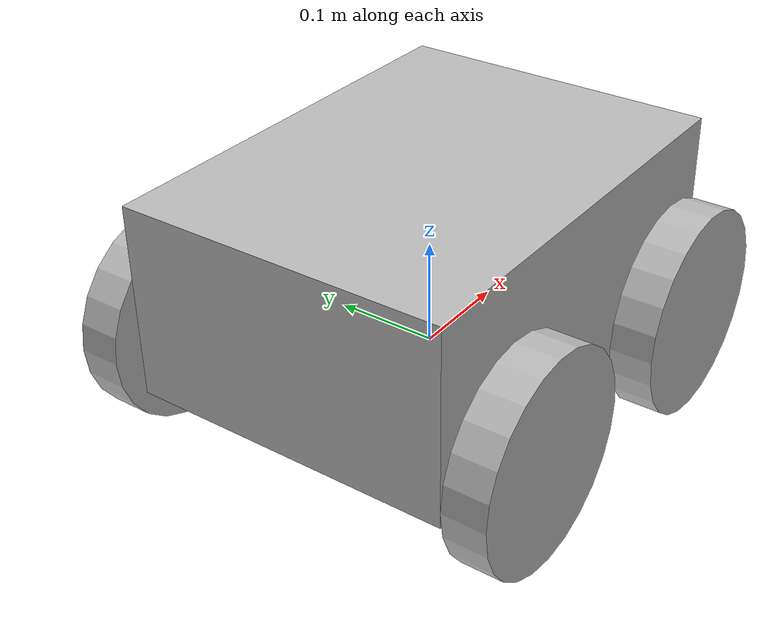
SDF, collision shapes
<?xml version="1.0"?>
<sdf version="1.6">
    <model name="X2">
        <link name="base_link">
            <inertial>
                <pose>0.011999 0.002 0.066996 0 -0 0</pose>
                <mass>16.524</mass>
                <inertia>
                    <ixx>0.320605</ixx>
                    <ixy>-0.000800023</ixy>
                    <ixz>0.0163992</ixz>
                    <iyy>0.399205</iyy>
                    <iyz>-0.000900133</iyz>
                    <izz>0.455501</izz>
                </inertia>
            </inertial>
            <collision name="chassis_collision">
                <pose>0 0 0.092 0 -0 0</pose>
                <geometry>
                    <box>
                        <size>0.42 0.31 0.184</size>
                    </box>
                </geometry>
            </collision>
            <visual name="chassis_visual">
                <pose>0 0 -0.0655 1.5708 0 -1.5708</pose>
                <geometry>
                    <mesh>
                        <uri>file://REPLACE_RESOURCE_PATH/robots/X2_Config_6/meshes/x2_chassis.dae</uri>
                    </mesh>
                </geometry>
            </visual>
            <visual name="navsat_visual_1">
                <pose>-0.18 0.126 0.1895 0 -0 0</pose>
                <geometry>
                    <cylinder>
                        <length>0.016</length>
                        <radius>0.026</radius>
                    </cylinder>
                </geometry>
            </visual>
            <visual name="center_left_headlight_visual">
                <pose>0.22 0.05 0.0845 0 -0 -3.14159</pose>
                <geometry>
                    <mesh>
                        <uri>file://REPLACE_RESOURCE_PATH/robots/X2_Config_6/meshes/headlight.dae</uri>
                    </mesh>
                </geometry>
            </visual>
            <visual name="left_headlight_visual">
                <pose>0.22 0.145 0.0845 0 -0 -3.14159</pose>
                <geometry>
                    <mesh>
                        <uri>file://REPLACE_RESOURCE_PATH/robots/X2_Config_6/meshes/headlight.dae</uri>
                    </mesh>
                </geometry>
            </visual>
            <visual name="center_right_headlight_visual">
                <pose>0.22 -0.05 0.0845 0 -0 -3.14159</pose>
                <geometry>
                    <mesh>
                        <uri>file://REPLACE_RESOURCE_PATH/robots/X2_Config_6/meshes/headlight.dae</uri>
                    </mesh>
                </geometry>
            </visual>
            <visual name="right_headlight_visual">
                <pose>0.22 -0.145 0.0845 0 -0 -3.14159</pose>
                <geometry>
                    <mesh>
                        <uri>file://REPLACE_RESOURCE_PATH/robots/X2_Config_6/meshes/headlight.dae</uri>
                    </mesh>
                </geometry>
            </visual>

            <sensor name="imu_sensor" type="imu">
                <always_on>1</always_on>
                <update_rate>50</update_rate>
                <imu>
                    <enable_orientation>0</enable_orientation>
                    <angular_velocity>
                        <x>
                            <noise type="gaussian">
                                <mean>0</mean>
                                <stddev>0.009</stddev>
                                <bias_mean>0.00075</bias_mean>
                                <bias_stddev>0.005</bias_stddev>
                                <dynamic_bias_stddev>0.00002</dynamic_bias_stddev>
				<dynamic_bias_correlation_time>400.0</dynamic_bias_correlation_time>
				<precision>0.00025</precision>
                            </noise>
                        </x>
                        <y>
                            <noise type="gaussian">
                                <mean>0</mean>
                                <stddev>0.009</stddev>
                                <bias_mean>0.00075</bias_mean>
                                <bias_stddev>0.005</bias_stddev>
                                <dynamic_bias_stddev>0.00002</dynamic_bias_stddev>
				<dynamic_bias_correlation_time>400.0</dynamic_bias_correlation_time>
				<precision>0.00025</precision>
                            </noise>
                        </y>
                        <z>
                            <noise type="gaussian">
                                <mean>0</mean>
                                <stddev>0.009</stddev>
                                <bias_mean>0.00075</bias_mean>
                                <bias_stddev>0.005</bias_stddev>
                                <dynamic_bias_stddev>0.00002</dynamic_bias_stddev>
				<dynamic_bias_correlation_time>400.0</dynamic_bias_correlation_time>
				<precision>0.00025</precision>
                            </noise>
                        </z>
                    </angular_velocity>
                    <linear_acceleration>
                        <x>
                            <noise type="gaussian">
                                <mean>0</mean>
                                <stddev>0.021</stddev>
                                <bias_mean>0.05</bias_mean>
                                <bias_stddev>0.0075</bias_stddev>
                                <dynamic_bias_stddev>0.000375</dynamic_bias_stddev>
				<dynamic_bias_correlation_time>175.0</dynamic_bias_correlation_time>
				<precision>0.005</precision>
                            </noise>
                        </x>
                        <y>
                            <noise type="gaussian">
                                <mean>0</mean>
                                <stddev>0.021</stddev>
                                <bias_mean>0.05</bias_mean>
                                <bias_stddev>0.0075</bias_stddev>
                                <dynamic_bias_stddev>0.000375</dynamic_bias_stddev>
				<dynamic_bias_correlation_time>175.0</dynamic_bias_correlation_time>
				<precision>0.005</precision>
                            </noise>
                        </y>
                        <z>
                            <noise type="gaussian">
                                <mean>0</mean>
                                <stddev>0.021</stddev>
                                <bias_mean>0.05</bias_mean>
                                <bias_stddev>0.0075</bias_stddev>
                                <dynamic_bias_stddev>0.000375</dynamic_bias_stddev>
				<dynamic_bias_correlation_time>175.0</dynamic_bias_correlation_time>
				<precision>0.005</precision>
                            </noise>
                        </z>
                    </linear_acceleration>
                </imu>

            </sensor>

            <visual name="camera_visual">
                <pose>0.23 0 0.19 0 0 0</pose>
                <geometry>
                    <box>
                        <size>0.02 0.02 0.02</size>
                    </box>
                </geometry>
            </visual>
            <visual name="laser_visual">
                <pose>0 0 0.23 0 -0 0</pose>
                <geometry>
                    <cylinder>
                        <radius>0.03</radius>
                        <length>0.1</length>
                    </cylinder>
                </geometry>
            </visual>
            <sensor name="front_laser" type="gpu_ray">
                <pose>0 0 0.27 0 -0 0</pose>
                <update_rate>15</update_rate>
                <lidar>
                    <scan>
                        <horizontal>
                            <!-- Resolution can't be above 16k, see
                            https://bitbucket.org/ignitionrobotics/ign-sensors/issues/8 -->
                            <samples>10000</samples>
                            <resolution>0.1</resolution>
                            <min_angle>-3.14159</min_angle>
                            <max_angle>3.14159</max_angle>
                        </horizontal>
                        <vertical>
                            <samples>16</samples>
                            <resolution>1</resolution>
                            <min_angle>-0.261799</min_angle>
                            <max_angle>0.261799</max_angle>
                        </vertical>
                    </scan>
                    <range>
                        <min>1.0</min>
                        <max>300</max>
                        <resolution>0.01</resolution>
                    </range>
                    <noise>
                        <type>gaussian</type>
                        <mean>0</mean>
                        <stddev>0.01</stddev>
                    </noise>
                </lidar>
            </sensor>
        </link>

        <link name="front_left_wheel">
            <pose>0.131 0.187795 0.0345 0 -0 0</pose>
            <inertial>
                <mass>0.477</mass>
                <inertia>
                    <ixx>0.0013</ixx>
                    <ixy>0</ixy>
                    <ixz>0</ixz>
                    <iyy>0.0024</iyy>
                    <iyz>0</iyz>
                    <izz>0.0013</izz>
                </inertia>
            </inertial>
            <collision name="collision">
                <pose>0 0 0 1.5707963267948966 -0 0</pose>
                <geometry>
                    <cylinder>
                        <length>0.04</length>
                        <radius>0.098</radius>
                    </cylinder>
                </geometry>
                <surface>
                    <friction>
                        <ode>
                            <mu>1</mu>
                            <mu2>1</mu2>
                            <slip1>0.0026</slip1>
                            <slip2>0</slip2>
                            <fdir1>0 0 1</fdir1>
                        </ode>
                    </friction>
                </surface>
            </collision>
            <visual name="visual">
                <pose>0 0 0 1.5708 -0 0</pose>
                <geometry>
                    <mesh>
                        <uri>file://REPLACE_RESOURCE_PATH/robots/X2_Config_6/meshes/x2_wheel_left.dae</uri>
                    </mesh>
                </geometry>
            </visual>
        </link>

        <link name="front_right_wheel">
            <pose>0.131 -0.187795 0.0345 0 -0 0</pose>
            <inertial>
                <mass>0.477</mass>
                <inertia>
                    <ixx>0.0013</ixx>
                    <ixy>0</ixy>
                    <ixz>0</ixz>
                    <iyy>0.0024</iyy>
                    <iyz>0</iyz>
                    <izz>0.0013</izz>
                </inertia>
            </inertial>
            <collision name="collision">
                <pose>0 0 0 1.5707963267948966 -0 0</pose>
                <geometry>
                    <cylinder>
                        <length>0.04</length>
                        <radius>0.098</radius>
                    </cylinder>
                </geometry>
                <surface>
                    <friction>
                        <ode>
                            <mu>1</mu>
                            <mu2>1</mu2>
                            <slip1>0.0026</slip1>
                            <slip2>0</slip2>
                            <fdir1>0 0 1</fdir1>
                        </ode>
                    </friction>
                </surface>
            </collision>
            <visual name="visual">
                <pose>0 0 0 1.5708 -0 0</pose>
                <geometry>
                    <mesh>
                        <uri>file://REPLACE_RESOURCE_PATH/robots/X2_Config_6/meshes/x2_wheel_right.dae</uri>
                    </mesh>
                </geometry>
            </visual>
        </link>

        <link name="rear_left_wheel">
            <pose>-0.131 0.187795 0.0345 0 -0 0</pose>
            <inertial>
                <mass>0.477</mass>
                <inertia>
                    <ixx>0.0013</ixx>
                    <ixy>0</ixy>
                    <ixz>0</ixz>
                    <iyy>0.0024</iyy>
                    <iyz>0</iyz>
                    <izz>0.0013</izz>
                </inertia>
            </inertial>
            <collision name="collision">
                <pose>0 0 0 1.5707963267948966 -0 0</pose>
                <geometry>
                    <cylinder>
                        <length>0.04</length>
                        <radius>0.098</radius>
                    </cylinder>
                </geometry>
                <surface>
                    <friction>
                        <ode>
                            <mu>1</mu>
                            <mu2>1</mu2>
                            <slip1>0.0026</slip1>
                            <slip2>0</slip2>
                            <fdir1>0 0 1</fdir1>
                        </ode>
                    </friction>
                </surface>
            </collision>
            <visual name="visual">
                <pose>0 0 0 1.5708 -0 0</pose>
                <geometry>
                    <mesh>
                        <uri>file://REPLACE_RESOURCE_PATH/robots/X2_Config_6/meshes/x2_wheel_left.dae</uri>
                    </mesh>
                </geometry>
            </visual>
        </link>

        <link name="rear_right_wheel">
            <pose>-0.131 -0.187795 0.0345 0 -0 0</pose>
            <inertial>
                <mass>0.477</mass>
                <inertia>
                    <ixx>0.0013</ixx>
                    <ixy>0</ixy>
                    <ixz>0</ixz>
                    <iyy>0.0024</iyy>
                    <iyz>0</iyz>
                    <izz>0.0013</izz>
                </inertia>
            </inertial>
            <collision name="collision">
                <pose>0 0 0 1.5707963267948966 -0 0</pose>
                <geometry>
                    <cylinder>
                        <length>0.04</length>
                        <radius>0.098</radius>
                    </cylinder>
                </geometry>
                <surface>
                    <friction>
                        <ode>
                            <mu>1</mu>
                            <mu2>1</mu2>
                            <slip1>0.0026</slip1>
                            <slip2>0</slip2>
                            <fdir1>0 0 1</fdir1>
                        </ode>
                    </friction>
                </surface>
            </collision>
            <visual name="visual">
                <pose>0 0 0 1.5708 -0 0</pose>
                <geometry>
                    <mesh>
                        <uri>file://REPLACE_RESOURCE_PATH/robots/X2_Config_6/meshes/x2_wheel_right.dae</uri>
                    </mesh>
                </geometry>
            </visual>
        </link>

        <joint name="front_left_wheel_joint" type="revolute">
            <child>front_left_wheel</child>
            <parent>base_link</parent>
            <axis>
                <xyz>0 1 0</xyz>
                <limit>
                    <lower>-1e+16</lower>
                    <upper>1e+16</upper>
                </limit>
                <use_parent_model_frame>1</use_parent_model_frame>
            </axis>
        </joint>

        <joint name="rear_left_wheel_joint" type="revolute">
            <parent>base_link</parent>
            <child>rear_left_wheel</child>
            <axis>
                <xyz>0 1 0</xyz>
                <limit>
                    <lower>-1.79769e+308</lower>
                    <upper>+1.79769e+308</upper>
                </limit>
            </axis>
        </joint>

        <joint name="rear_right_wheel_joint" type="revolute">
            <parent>base_link</parent>
            <child>rear_right_wheel</child>
            <axis>
                <xyz>0 1 0</xyz>
                <limit>
                    <lower>-1.79769e+308</lower>
                    <upper>+1.79769e+308</upper>
                </limit>
            </axis>
        </joint>

        <joint name="front_right_wheel_joint" type="revolute">
            <parent>base_link</parent>
            <child>front_right_wheel</child>
            <axis>
                <xyz>0 1 0</xyz>
                <limit>
                    <lower>-1.79769e+308</lower>
                    <upper>+1.79769e+308</upper>
                </limit>
            </axis>
        </joint>

        <link name="base_link/front_laser">
            <pose>0 0 0.27 0 0 0</pose>
        </link>
        <joint name="base_link_front_laser_JOINT" type="fixed">
            <parent>base_link</parent>
            <child>base_link/front_laser</child>
        </joint>

        <plugin filename="gz-sim-diff-drive-system" name="gz::sim::systems::DiffDrive">
            <left_joint>front_left_wheel_joint</left_joint>
            <left_joint>rear_left_wheel_joint</left_joint>
            <right_joint>front_right_wheel_joint</right_joint>
            <right_joint>rear_right_wheel_joint</right_joint>
            <wheel_separation>1.25</wheel_separation>
            <wheel_radius>0.3</wheel_radius>
            <max_linear_acceleration>1</max_linear_acceleration>
            <min_linear_acceleration>-1</min_linear_acceleration>
            <max_angular_acceleration>2</max_angular_acceleration>
            <min_angular_acceleration>-2</min_angular_acceleration>
            <max_linear_velocity>5.0</max_linear_velocity>
            <min_linear_velocity>-5.0</min_linear_velocity>
            <max_angular_velocity>5</max_angular_velocity>
            <min_angular_velocity>-5</min_angular_velocity>
            <update_rate>50</update_rate>
            <update_frequency>50</update_frequency>
            <publish_tf>false</publish_tf>
        </plugin>

        <plugin filename="ignition-gazebo-navsat-system"  name="ignition::gazebo::systems::NavSat"></plugin>

        <plugin name="ignition::gazebo::systems::PosePublisher" filename="ignition-gazebo-pose-publisher-system">
            <publish_link_pose>false</publish_link_pose>
            <publish_collision_pose>false</publish_collision_pose>
            <publish_visual_pose>false</publish_visual_pose>
            <publish_nested_model_pose>true</publish_nested_model_pose>
            <update_frequency>20</update_frequency>
        </plugin>

        <plugin name="gz::sim::systems::JointStatePublisher" filename="gz-sim-joint-state-publisher-system">
            <joint_name>front_left_wheel_joint</joint_name>
            <joint_name>rear_left_wheel_joint</joint_name>
            <joint_name>front_right_wheel_joint</joint_name>
            <joint_name>rear_right_wheel_joint</joint_name>
            <update_rate>50</update_rate>
        </plugin>
    </model>
</sdf>
